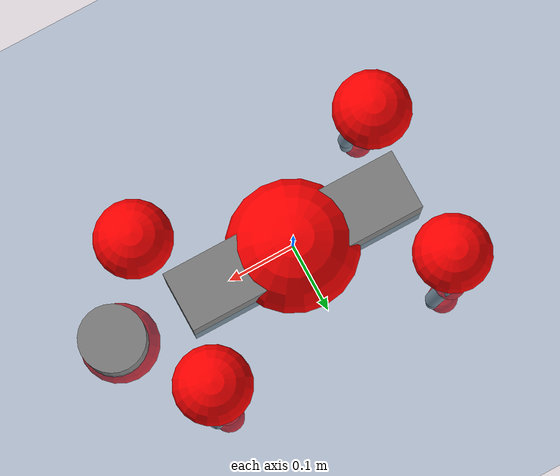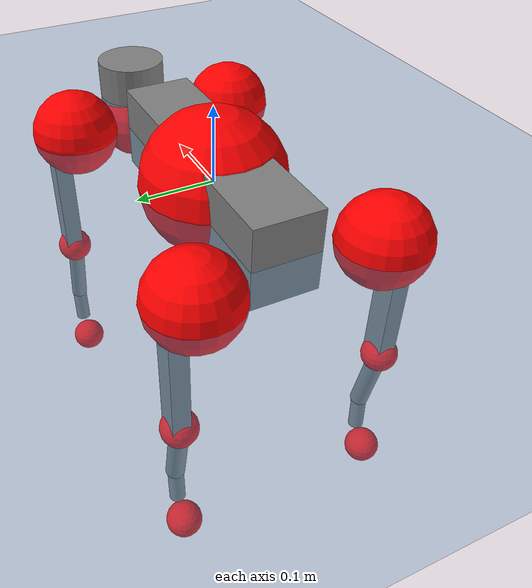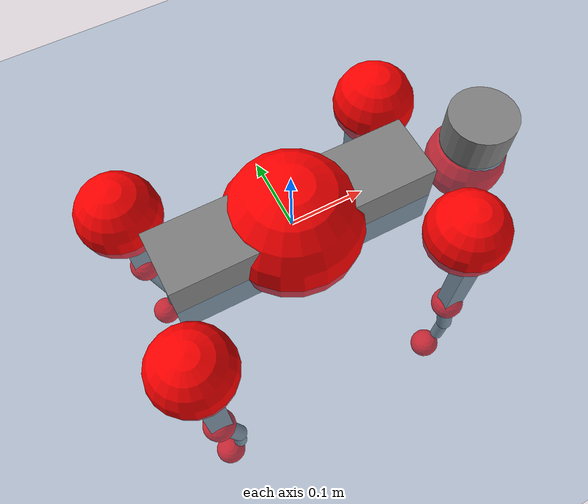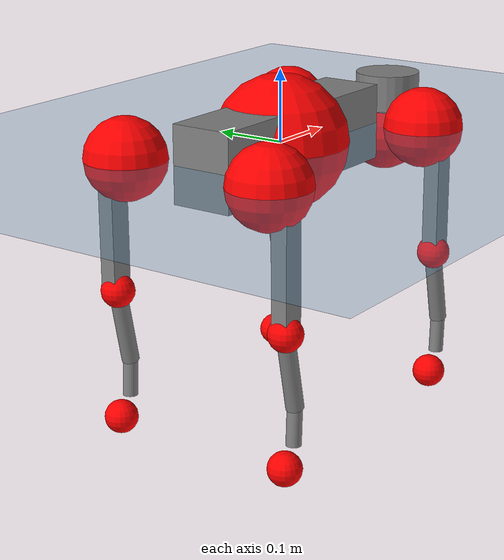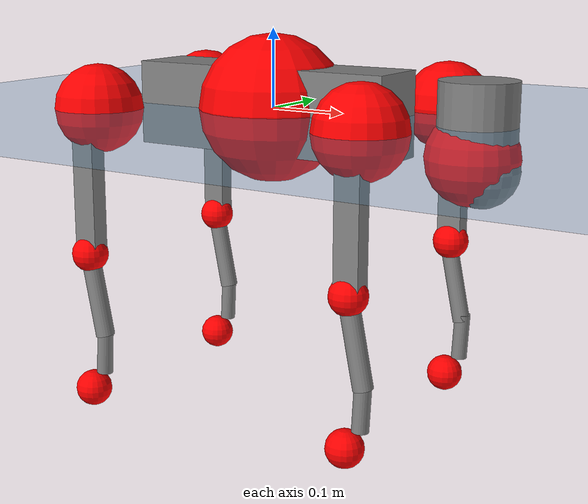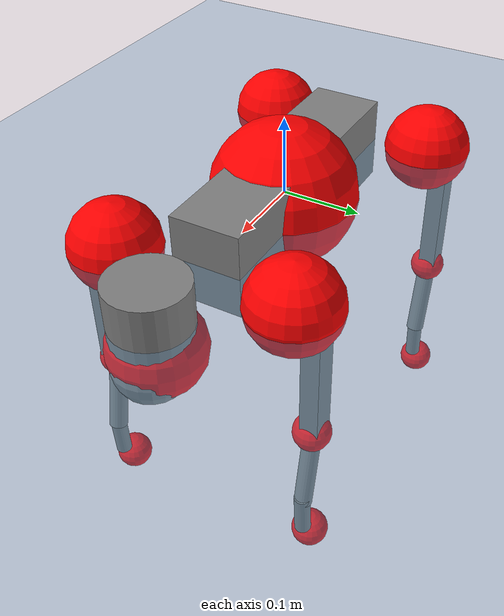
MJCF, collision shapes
<mujoco model="go2">
  <compiler angle="radian" assetdir="assets" balanceinertia="true" inertiafromgeom="false"/>

  <option timestep="0.005" density="1.2" viscosity="2e-05"/>

  <size nkey="1"/>

  <visual>
    <quality shadowsize="8192"/>
    <map shadowclip="0.5"/>
  </visual>

  <default>
    <default class="/">
      <geom contype="0" conaffinity="0" group="1" solref="-1000 -80"/>
      <site size="0.01 0.005 0.005" group="5"/>
      <general forcelimited="true" biastype="affine" gainprm="20" biasprm="0 -20 -0.5"/>
      <default class="go2">
        <joint armature="0.01" damping="0.01" frictionloss="0.2"/>
        <geom condim="1" margin="0.001"/>
        <default class="visual">
          <geom type="mesh" group="2"/>
        </default>
        <default class="collision">
          <geom group="3"/>
          <default class="foot">
            <geom size="0.022 0 0" condim="6" priority="1" friction="0.8 0.02 0.01" solimp="0.015 1 0.022"/>
          </default>
        </default>
        <default class="reward_collision_sphere">
          <geom group="5" rgba="1 0 0 1"/>
        </default>
      </default>
    </default>
  </default>

  <asset>
    <texture type="skybox" colorspace="auto" name="//unnamed_texture_0" builtin="gradient" rgb1="0.95 0.95 0.95" rgb2="0.95 0.95 0.95" width="100" height="600"/>
    <texture type="2d" colorspace="auto" name="texplane" builtin="checker" rgb1="0.345 0.575 0.748" rgb2="0.345 0.575 0.748" markrgb="1 1 1" width="512" height="512"/>
    <material name="MatPlane" class="/" texture="texplane" texuniform="true" texrepeat="2 2" specular="0.9"/>
    <material name="metal" class="/" rgba="0.9 0.95 0.95 1"/>
    <material name="black" class="/" rgba="0 0 0 1"/>
    <material name="white" class="/"/>
    <material name="gray" class="/" rgba="0.671705 0.692426 0.77427 1"/>
    <mesh name="base_0" class="/" file="base_0.obj"/>
    <mesh name="base_1" class="/" file="base_1.obj"/>
    <mesh name="base_2" class="/" file="base_2.obj"/>
    <mesh name="base_3" class="/" file="base_3.obj"/>
    <mesh name="base_4" class="/" file="base_4.obj"/>
    <mesh name="hip_0" class="/" file="hip_0.obj"/>
    <mesh name="hip_1" class="/" file="hip_1.obj"/>
    <mesh name="thigh_0" class="/" file="thigh_0.obj"/>
    <mesh name="thigh_1" class="/" file="thigh_1.obj"/>
    <mesh name="thigh_mirror_0" class="/" file="thigh_mirror_0.obj"/>
    <mesh name="thigh_mirror_1" class="/" file="thigh_mirror_1.obj"/>
    <mesh name="calf_0" class="/" file="calf_0.obj"/>
    <mesh name="calf_1" class="/" file="calf_1.obj"/>
    <mesh name="calf_mirror_0" class="/" file="calf_mirror_0.obj"/>
    <mesh name="calf_mirror_1" class="/" file="calf_mirror_1.obj"/>
    <mesh name="foot" class="/" file="foot.obj"/>
  </asset>

  <worldbody>
    <geom name="floor" class="/" size="100 100 0.125" type="plane" group="0" material="MatPlane"/>
    <light name="toplight_shadow" class="/" pos="0 0 5" dir="0.0990148 0.0990148 -0.990148" type="directional" ambient="0.04 0.04 0.04" diffuse="0.55 0.55 0.55" specular="0.12 0.12 0.12"/>
    <light name="toplight_fill" class="/" pos="0 0 5" dir="0.0990148 0.0990148 -0.990148" type="directional" castshadow="false" ambient="0.04 0.04 0.04" diffuse="0.3 0.3 0.3" specular="0.08 0.08 0.08"/>
    <body name="trunk" childclass="go2" pos="-0.000215598 -0.000849056 0.000507942" quat="1 -5.28708e-06 6.39298e-06 1.172e-06">
      <inertial pos="0.0195371 -0.00126013 -0.00455981" quat="0.00359845 0.720434 -0.00667619 0.693482" mass="5.70629" diaginertia="0.0946058 0.0886798 0.0118106"/>
      <joint name="//unnamed_joint_0" type="free" armature="0" damping="0" frictionloss="0"/>
      <geom name="//unnamed_geom_1" class="visual" material="black" mesh="base_0"/>
      <geom name="//unnamed_geom_2" class="visual" material="black" mesh="base_1"/>
      <geom name="//unnamed_geom_3" class="visual" material="black" mesh="base_2"/>
      <geom name="//unnamed_geom_4" class="visual" material="white" mesh="base_3"/>
      <geom name="//unnamed_geom_5" class="visual" material="gray" mesh="base_4"/>
      <geom name="trunk_1" class="collision" size="0.176687 0.0439134 0.0535415" type="box"/>
      <geom name="trunk_2" class="collision" size="0.0469662 0.0422696" pos="0.277628 0 0.00865069" type="cylinder"/>
      <geom name="trunk_3" class="collision" size="0.0441483" pos="0.285421 0 -0.0519041"/>
      <geom name="//unnamed_geom_9" class="reward_collision_sphere" size="0.0939325"/>
      <geom name="//unnamed_geom_10" class="reward_collision_sphere" size="0.0563595" pos="0.272757 0 -0.0389281"/>
      <site name="imu" pos="-0.0214907 -0.00236008 0.0324038" size="0.00939325"/>
      <camera name="track" pos="0 -1.95754 0" quat="0.707107 0.707107 0 0" mode="trackcom"/>
      <camera name="ego_camera" pos="0.30393 0 0.0389281" quat="-0.5 -0.5 0.5 0.5"/>
      <body name="FL_hip" pos="0.187915 0.047958 0.00287689" quat="1 -0.000143088 -0.000273356 0.000434139">
        <inertial pos="-0.00546243 0.00208566 -0.00057361" quat="0.494807 0.500773 0.505642 0.498717" mass="0.558481" diaginertia="0.00077465 0.000530767 0.000234289"/>
        <joint name="FL_hip_joint" pos="0 0 0" axis="0.999994 0.00174141 0.00292095" stiffness="0.0124357" range="-1.00127 1.03512" armature="0.00931419" damping="0" frictionloss="0.189332"/>
        <geom name="//unnamed_geom_11" class="visual" material="metal" mesh="hip_0"/>
        <geom name="//unnamed_geom_12" class="visual" material="gray" mesh="hip_1"/>
        <geom name="//unnamed_geom_13" class="collision" size="0.0432089 0.0187865" pos="0 0.0783018 0" quat="0.707107 0.707107 0 0" type="cylinder"/>
        <geom name="//unnamed_geom_14" class="reward_collision_sphere" size="0.0563595" pos="0 0.068514 0"/>
        <body name="FL_thigh" pos="-0.000781653 0.0955232 0.00233541" quat="1 3.04916e-05 -6.03469e-05 0.000196436">
          <inertial pos="-0.00351334 -0.021918 -0.0279801" quat="0.827738 0.0787787 -0.0182939 0.555256" mass="0.955646" diaginertia="0.00525747 0.00524066 0.000430543"/>
          <joint name="FL_thigh_joint" pos="0 0 0" axis="0.00520309 0.999941 0.00950068" stiffness="0.00584331" range="-1.58473 3.53152" armature="0.00993164" damping="0.00804329" frictionloss="0.178239"/>
          <geom name="//unnamed_geom_15" class="visual" material="metal" mesh="thigh_0"/>
          <geom name="//unnamed_geom_16" class="visual" material="gray" mesh="thigh_1"/>
          <geom name="//unnamed_geom_17" class="collision" size="0.100038 0.0115067 0.0159685" pos="0 0 -0.0921299" quat="0.707107 0 0.707107 0" type="box"/>
          <body name="FL_calf" pos="0.000169215 -0.00268005 -0.183404" quat="1 -0.000214339 -0.000193153 9.68987e-05">
            <inertial pos="0.00628858 -0.000542434 -0.124179" quat="0.710766 0.0009605 -0.00355214 0.703419" mass="0.199219" diaginertia="0.00129798 0.00135141 2.51166e-05"/>
            <joint name="FL_calf_joint" pos="0 0 0" axis="-0.00534706 0.999964 -0.00665601" stiffness="0.00154825" range="-2.76774 -0.838205" armature="0.00950102" damping="0.00175048" frictionloss="0.189395"/>
            <geom name="//unnamed_geom_18" class="visual" material="gray" mesh="calf_0"/>
            <geom name="//unnamed_geom_19" class="visual" material="black" mesh="calf_1"/>
            <geom name="FL_calf0" class="collision" size="0.0112719 0.0563595" pos="0.00779307 0 -0.0519041" quat="0.994493 0 -0.104807 0" type="cylinder"/>
            <geom name="//unnamed_geom_21" class="collision" size="0.0103326 0.0305281" pos="0.0194827 0 -0.12803" quat="0.999688 0 0.0249974 0" type="cylinder"/>
            <geom name="//unnamed_geom_22" class="visual" pos="0 0 -0.18426" quat="1 0 0 0" material="black" mesh="foot"/>
            <geom name="FL_foot" class="foot" size="0.0177722" pos="-0.00194827 0 -0.18426"/>
            <geom name="//unnamed_geom_24" class="reward_collision_sphere" size="0.0234831"/>
            <geom name="//unnamed_geom_25" class="reward_collision_sphere" size="0.0234831" pos="-0.00194827 0 -0.18426"/>
            <site name="FL_foot" class="foot" pos="-0.00194827 0 -0.18426" size="0.00939325"/>
          </body>
        </body>
      </body>
      <body name="FR_hip" pos="0.1885 -0.0451402 -0.00122297" quat="1 1.96095e-05 -8.26157e-06 7.72059e-06">
        <inertial pos="-0.00426368 -0.00147229 -0.00124385" quat="0.497787 0.505146 0.500146 0.496879" mass="0.554355" diaginertia="0.000788486 0.000522489 0.00023687"/>
        <joint name="FR_hip_joint" pos="0 0 0" axis="1 -0.00076769 0.000532176" stiffness="0.00647817" range="-1.04901 1.04271" armature="0.00896871" damping="0.0170677" frictionloss="0.178495"/>
        <geom name="//unnamed_geom_26" class="visual" pos="0 9.90534e-10 4.2486e-08" quat="4.63268e-05 1 0 0" material="metal" mesh="hip_0"/>
        <geom name="//unnamed_geom_27" class="visual" pos="0 1.60577e-09 -1.05084e-07" quat="4.63268e-05 1 0 0" material="gray" mesh="hip_1"/>
        <geom name="//unnamed_geom_28" class="collision" size="0.0432089 0.0187865" pos="0 -0.0783018 0" quat="0.707107 0.707107 0 0" type="cylinder"/>
        <geom name="//unnamed_geom_29" class="reward_collision_sphere" size="0.0563595" pos="0 -0.068514 0"/>
        <body name="FR_thigh" pos="0.00261335 -0.0914039 0.00231952" quat="1 -0.00035918 0.000195372 -0.000119666">
          <inertial pos="-0.00257299 0.0196686 -0.0284106" quat="0.551635 -0.0196378 0.0834272 0.829671" mass="0.974448" diaginertia="0.00532933 0.00533175 0.000437877"/>
          <joint name="FR_thigh_joint" pos="0 0 0" axis="0.000655247 -0.999997 0.00234941" stiffness="0.00302716" range="-3.53221 1.57177" armature="0.0096498" damping="0.0112442" frictionloss="0.18841"/>
          <geom name="//unnamed_geom_30" class="visual" material="metal" mesh="thigh_mirror_0"/>
          <geom name="//unnamed_geom_31" class="visual" material="gray" mesh="thigh_mirror_1"/>
          <geom name="//unnamed_geom_32" class="collision" size="0.100038 0.0115067 0.0159685" pos="0 0 -0.0921299" quat="0.707107 0 0.707107 0" type="box"/>
          <body name="FR_calf" pos="-0.00195654 0.000299204 -0.184099" quat="1 0.000536045 -0.000317235 0.000417039">
            <inertial pos="0.00507528 0.000749391 -0.122509" quat="0.704034 -0.00509414 0.00112061 0.710148" mass="0.201027" diaginertia="0.00130055 0.00131454 2.54223e-05"/>
            <joint name="FR_calf_joint" pos="0 0 0" axis="-0.00985495 -0.999934 0.00584798" stiffness="0.00166683" range="0.841612 2.72159" armature="0.0102726" damping="0.0199331" frictionloss="0.174797"/>
            <geom name="//unnamed_geom_33" class="visual" material="gray" mesh="calf_mirror_0"/>
            <geom name="//unnamed_geom_34" class="visual" material="black" mesh="calf_mirror_1"/>
            <geom name="FR_calf0" class="collision" size="0.0122112 0.0563595" pos="0.00974134 0 -0.0519041" quat="0.995004 0 -0.0998334 0" type="cylinder"/>
            <geom name="//unnamed_geom_36" class="collision" size="0.0103326 0.0305281" pos="0.0194827 0 -0.12803" quat="0.999688 0 0.0249974 0" type="cylinder"/>
            <geom name="//unnamed_geom_37" class="visual" pos="0 0 -0.18426" quat="1 0 0 0" material="black" mesh="foot"/>
            <geom name="FR_foot" class="foot" size="0.0216339" pos="-0.00194827 0 -0.18426"/>
            <geom name="//unnamed_geom_39" class="reward_collision_sphere" size="0.0234831"/>
            <geom name="//unnamed_geom_40" class="reward_collision_sphere" size="0.0234831" pos="-0.00194827 0 -0.18426"/>
            <site name="FR_foot" class="foot" pos="-0.00194827 0 -0.18426" size="0.00939325"/>
          </body>
        </body>
      </body>
      <body name="RL_hip" pos="-0.188211 0.0456033 -0.00016734" quat="1 -7.44163e-05 -1.23766e-05 -8.05944e-05">
        <inertial pos="0.00543538 0.00113657 -0.000277784" quat="0.502977 0.496921 0.498517 0.501562" mass="0.54934" diaginertia="0.000766829 0.000529028 0.000229279"/>
        <joint name="RL_hip_joint" pos="0 0 0" axis="-0.999943 -0.00325492 -0.0101316" stiffness="0.0052511" range="-1.05542 1.06588" armature="0.0093601" damping="0.0098578" frictionloss="0.187229"/>
        <geom name="//unnamed_geom_41" class="visual" pos="-9.50127e-10 0 -1.86247e-07" quat="4.63268e-05 0 1 0" material="metal" mesh="hip_0"/>
        <geom name="//unnamed_geom_42" class="visual" pos="-1.54027e-09 0 -1.65174e-07" quat="4.63268e-05 0 1 0" material="gray" mesh="hip_1"/>
        <geom name="//unnamed_geom_43" class="collision" size="0.0432089 0.0187865" pos="0 0.0783018 0" quat="0.707107 0.707107 0 0" type="cylinder"/>
        <geom name="//unnamed_geom_44" class="reward_collision_sphere" size="0.0563595" pos="0 0.068514 0"/>
        <body name="RL_thigh" pos="5.32714e-05 0.0931282 -0.00168775" quat="1 -5.04821e-06 -3.80994e-05 -3.98227e-05">
          <inertial pos="-0.00348235 -0.0222737 -0.0303175" quat="0.829184 0.0863925 -0.0211692 0.551853" mass="0.970275" diaginertia="0.00519237 0.00511537 0.00041761"/>
          <joint name="RL_thigh_joint" pos="0 0 0" axis="-0.00384091 0.999969 0.00690528" range="-0.538634 4.53174" armature="0.00982384" damping="0.00186019" frictionloss="0.183146"/>
          <geom name="//unnamed_geom_45" class="visual" material="metal" mesh="thigh_0"/>
          <geom name="//unnamed_geom_46" class="visual" material="gray" mesh="thigh_1"/>
          <geom name="//unnamed_geom_47" class="collision" size="0.100038 0.0115067 0.0159685" pos="0 0 -0.0921299" quat="0.707107 0 0.707107 0" type="box"/>
          <body name="RL_calf" pos="-5.81356e-05 -0.00292891 -0.185186" quat="1 -9.87361e-05 0.000209512 0.000184379">
            <inertial pos="0.00565821 -0.000453031 -0.122653" quat="0.71087 0.00100865 -0.0045108 0.703308" mass="0.198779" diaginertia="0.00132723 0.00130772 2.56019e-05"/>
            <joint name="RL_calf_joint" pos="0 0 0" axis="0.000338394 1 -0.000366709" range="-2.67699 -0.851331" armature="0.00927528" damping="0.00647404" frictionloss="0.190664"/>
            <geom name="//unnamed_geom_48" class="visual" material="gray" mesh="calf_0"/>
            <geom name="//unnamed_geom_49" class="visual" material="black" mesh="calf_1"/>
            <geom name="RL_calf0" class="collision" size="0.0122112 0.0563595" pos="0.00974134 0 -0.0519041" quat="0.995004 0 -0.0998334 0" type="cylinder"/>
            <geom name="//unnamed_geom_51" class="collision" size="0.0103326 0.0305281" pos="0.0194827 0 -0.12803" quat="0.999688 0 0.0249974 0" type="cylinder"/>
            <geom name="//unnamed_geom_52" class="visual" pos="0 0 -0.18426" quat="1 0 0 0" material="black" mesh="foot"/>
            <geom name="RL_foot" class="foot" size="0.0170726" pos="-0.00194827 0 -0.18426"/>
            <geom name="//unnamed_geom_54" class="reward_collision_sphere" size="0.0234831"/>
            <geom name="//unnamed_geom_55" class="reward_collision_sphere" size="0.0234831" pos="-0.00194827 0 -0.18426"/>
            <site name="RL_foot" class="foot" pos="-0.00194827 0 -0.18426" size="0.00939325"/>
          </body>
        </body>
      </body>
      <body name="RR_hip" pos="-0.18836 -0.0467912 -0.00140643" quat="1 -0.000516154 4.30409e-05 0.000386709">
        <inertial pos="0.00486014 -0.000514627 4.5007e-05" quat="0.499579 0.49869 0.496471 0.505218" mass="0.558683" diaginertia="0.000777949 0.000525596 0.000236686"/>
        <joint name="RR_hip_joint" pos="0 0 0" axis="-0.999963 -0.00753877 0.00425455" range="-1.05744 1.01199" armature="0.00934969" damping="0.00575278" frictionloss="0.193026"/>
        <geom name="//unnamed_geom_56" class="visual" pos="9.50287e-10 9.90534e-10 -2.28733e-07" quat="2.14617e-09 4.63268e-05 4.63268e-05 -1" material="metal" mesh="hip_0"/>
        <geom name="//unnamed_geom_57" class="visual" pos="1.53987e-09 1.60577e-09 -6.00901e-08" quat="2.14617e-09 4.63268e-05 4.63268e-05 -1" material="gray" mesh="hip_1"/>
        <geom name="//unnamed_geom_58" class="collision" size="0.0432089 0.0187865" pos="0 -0.0783018 0" quat="0.707107 0.707107 0 0" type="cylinder"/>
        <geom name="//unnamed_geom_59" class="reward_collision_sphere" size="0.0563595" pos="0 -0.068514 0"/>
        <body name="RR_thigh" pos="0.000249591 -0.0929465 -0.000545775" quat="1 -3.88455e-05 0.000711529 0.000174428">
          <inertial pos="-0.00344077 0.0201379 -0.0285619" quat="0.550794 -0.0204973 0.0855017 0.829997" mass="0.958933" diaginertia="0.00527076 0.00525269 0.000427105"/>
          <joint name="RR_thigh_joint" pos="0 0 0" axis="0.00226181 -0.999969 -0.00755935" stiffness="0.00128749" range="-4.53116 0.515526" armature="0.009308" damping="0.0168443" frictionloss="0.188807"/>
          <geom name="//unnamed_geom_60" class="visual" material="metal" mesh="thigh_mirror_0"/>
          <geom name="//unnamed_geom_61" class="visual" material="gray" mesh="thigh_mirror_1"/>
          <geom name="//unnamed_geom_62" class="collision" size="0.100038 0.0115067 0.0159685" pos="0 0 -0.0921299" quat="0.707107 0 0.707107 0" type="box"/>
          <body name="RR_calf" pos="-0.00193288 -0.00081941 -0.185502" quat="1 -0.000323626 -0.000260278 6.36088e-05">
            <inertial pos="0.0082933 0.000736256 -0.12216" quat="0.7064 -0.0014609 0.00224579 0.707808" mass="0.198753" diaginertia="0.00133298 0.00132409 2.5629e-05"/>
            <joint name="RR_calf_joint" pos="0 0 0" axis="-0.00451518 -0.99996 0.00767879" range="0.817707 2.76505" armature="0.00858886" damping="0.00618992" frictionloss="0.186931"/>
            <geom name="//unnamed_geom_63" class="visual" material="gray" mesh="calf_mirror_0"/>
            <geom name="//unnamed_geom_64" class="visual" material="black" mesh="calf_mirror_1"/>
            <geom name="RR_calf0" class="collision" size="0.0122112 0.0563595" pos="0.00974134 0 -0.0519041" quat="0.995004 0 -0.0998334 0" type="cylinder"/>
            <geom name="//unnamed_geom_66" class="collision" size="0.0103326 0.0305281" pos="0.0194827 0 -0.12803" quat="0.999688 0 0.0249974 0" type="cylinder"/>
            <geom name="//unnamed_geom_67" class="visual" pos="0 0 -0.18426" quat="1 0 0 0" material="black" mesh="foot"/>
            <geom name="RR_foot" class="foot" size="0.0202894" pos="-0.00194827 0 -0.18426"/>
            <geom name="//unnamed_geom_69" class="reward_collision_sphere" size="0.0234831"/>
            <geom name="//unnamed_geom_70" class="reward_collision_sphere" size="0.0234831" pos="-0.00194827 0 -0.18426"/>
            <site name="RR_foot" class="foot" pos="-0.00194827 0 -0.18426" size="0.00939325"/>
          </body>
        </body>
      </body>
    </body>
  </worldbody>

  <contact>
    <pair class="/" geom1="floor" geom2="FL_foot" name="//unnamed_contact_0"/>
    <pair class="/" geom1="floor" geom2="FR_foot" name="//unnamed_contact_1"/>
    <pair class="/" geom1="floor" geom2="RL_foot" name="//unnamed_contact_2"/>
    <pair class="/" geom1="floor" geom2="RR_foot" name="//unnamed_contact_3"/>
  </contact>

  <actuator>
    <general name="FL_hip" class="/" joint="FL_hip_joint" forcerange="-24.1834 24.1834" gainprm="19.8143" biasprm="0 -19.8143 -0.459107"/>
    <general name="FL_thigh" class="/" joint="FL_thigh_joint" forcerange="-22.3465 22.3465" gainprm="19.8143" biasprm="0 -19.8143 -0.459107"/>
    <general name="FL_calf" class="/" joint="FL_calf_joint" forcerange="-43.7601 43.7601" gainprm="19.8143" biasprm="0 -19.8143 -0.459107"/>
    <general name="FR_hip" class="/" joint="FR_hip_joint" forcerange="-23.8653 23.8653" gainprm="19.8143" biasprm="0 -19.8143 -0.459107"/>
    <general name="FR_thigh" class="/" joint="FR_thigh_joint" forcerange="-23.8827 23.8827" gainprm="19.8143" biasprm="0 -19.8143 -0.459107"/>
    <general name="FR_calf" class="/" joint="FR_calf_joint" forcerange="-42.8348 42.8348" gainprm="19.8143" biasprm="0 -19.8143 -0.459107"/>
    <general name="RL_hip" class="/" joint="RL_hip_joint" forcerange="-22.6173 22.6173" gainprm="19.8143" biasprm="0 -19.8143 -0.459107"/>
    <general name="RL_thigh" class="/" joint="RL_thigh_joint" forcerange="-22.6033 22.6033" gainprm="19.8143" biasprm="0 -19.8143 -0.459107"/>
    <general name="RL_calf" class="/" joint="RL_calf_joint" forcerange="-43.4639 43.4639" gainprm="19.8143" biasprm="0 -19.8143 -0.459107"/>
    <general name="RR_hip" class="/" joint="RR_hip_joint" forcerange="-20.4471 20.4471" gainprm="19.8143" biasprm="0 -19.8143 -0.459107"/>
    <general name="RR_thigh" class="/" joint="RR_thigh_joint" forcerange="-21.8729 21.8729" gainprm="19.8143" biasprm="0 -19.8143 -0.459107"/>
    <general name="RR_calf" class="/" joint="RR_calf_joint" forcerange="-42.9129 42.9129" gainprm="19.8143" biasprm="0 -19.8143 -0.459107"/>
  </actuator>

  <sensor>
    <gyro site="imu" name="imu_angular_velocity"/>
    <velocimeter site="imu" name="imu_linear_velocity"/>
    <framelinvel objtype="site" objname="FL_foot" name="FL_foot_global_linear_velocity"/>
    <framelinvel objtype="site" objname="FR_foot" name="FR_foot_global_linear_velocity"/>
    <framelinvel objtype="site" objname="RL_foot" name="RL_foot_global_linear_velocity"/>
    <framelinvel objtype="site" objname="RR_foot" name="RR_foot_global_linear_velocity"/>
  </sensor>

  <keyframe>
    <key name="home" qpos="0 0 0.325 1 0 0 0 0.1 0.8 -1.5 -0.1 -0.8 1.5 -0.1 0.8 -1.5 0.1 -0.8 1.5"/>
  </keyframe>
</mujoco>
